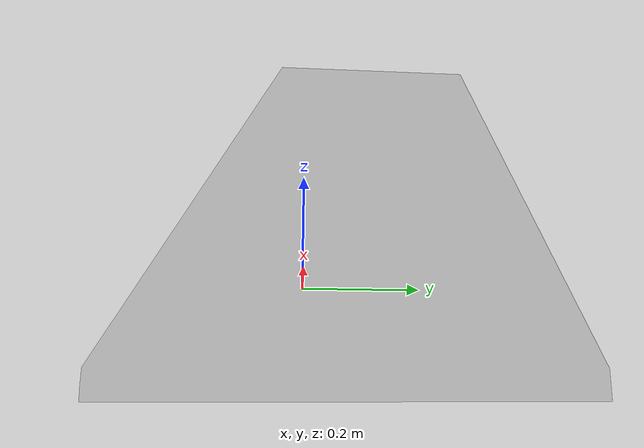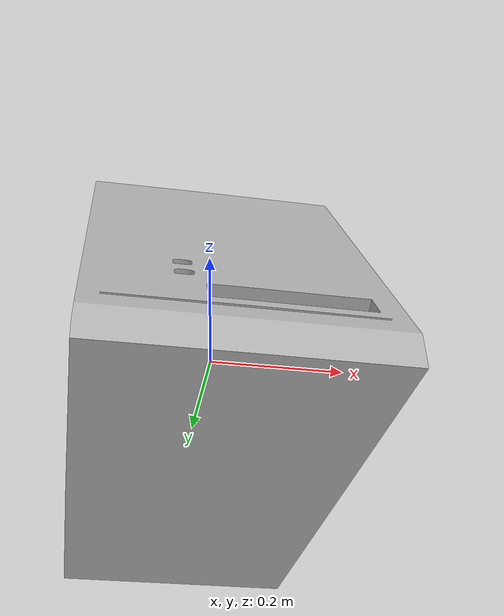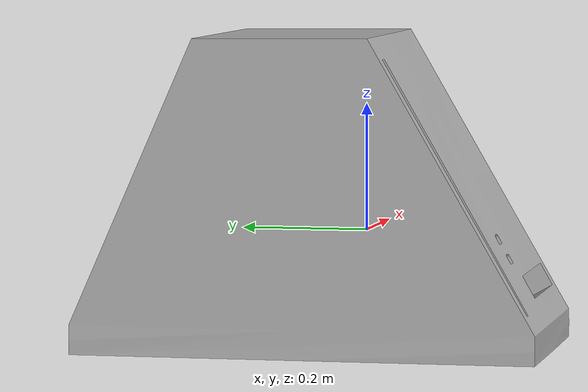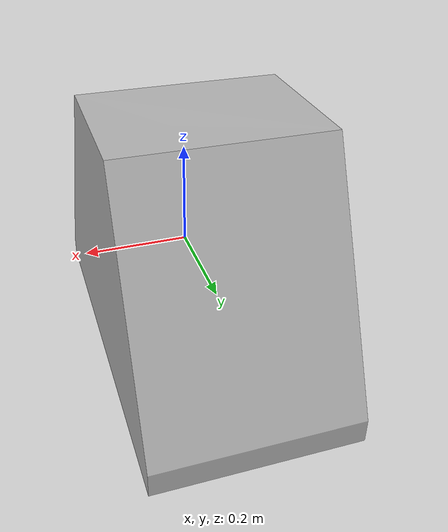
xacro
<?xml version="1.0" ?>
<robot name="panel_body" xmlns:xacro="http://www.ros.org/wiki/xacro">

<xacro:include filename="$(find panel_body_description)/urdf/panel_materials.xacro" />
<xacro:include filename="$(find panel_body_description)/urdf/panel_body.ros2control" />
<xacro:include filename="$(find panel_body_description)/urdf/panel_body.gazebo" />
<link name="panel_base_link">
  <inertial>
    <origin xyz="-1.0467293905094265e-05 0.00070968858897686 0.0002490991353988647" rpy="0 0 0"/>
    <mass value="0.0016245312698889808"/>
    <inertia ixx="0.0" iyy="0.0" izz="0.0" ixy="-0.0" iyz="-0.0" ixz="0.0"/>
  </inertial>
  <visual>
    <origin xyz="0 0 0" rpy="0 0 0"/>
    <geometry>
      <mesh filename="file://$(find panel_body_description)/meshes/panel_base_link.stl" scale=".001 .001 .001"/>
    </geometry>
    <material name="silver"/>
  </visual>
  <collision>
    <origin xyz="0 0 0" rpy="0 0 0"/>
    <geometry>
      <mesh filename="file://$(find panel_body_description)/meshes/panel_base_link.stl" scale=".001 .001 .001"/>
    </geometry>
  </collision>
</link>

</robot>

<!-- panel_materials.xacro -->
<robot name="panel_body" xmlns:xacro="http://www.ros.org/wiki/xacro" >

<material name="silver">
  <color rgba="0.700 0.700 0.700 1.000"/>
</material>

</robot>
